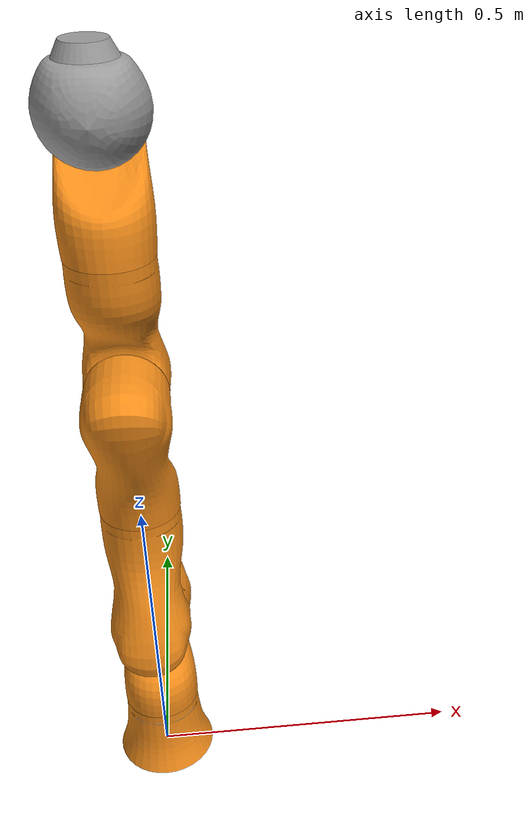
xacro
<?xml version="1.0"?>
<robot name="kuka_lwr">

 <property name="M_PI" value="3.1415926535897931" />
 <property name="name" value="kuka" />
  <!--
     Little helper macro to define the inertia matrix needed
     for links.
     -->
  <!-- width is along x axis
       length is along y axis
       height is along z axis
  -->
  <macro name="cuboid_inertia_def" params="width height length mass">
    <inertia ixx="${mass * (height * height + length * length) / 12}"
             iyy="${mass * (width * width + height * height) / 12}"
             izz="${mass * (width * width + length * length) / 12}"
             ixy="0" iyz="0" ixz="0"/>
  </macro>

  <!-- length is along the y-axis! -->
  <macro name="cylinder_inertia_def" params="radius length mass">
    <inertia ixx="${mass * (3 * radius * radius + length * length) / 12}"
             iyy="${mass * radius* radius / 2}"
             izz="${mass * (3 * radius * radius + length * length) / 12}"
             ixy="0" iyz="0" ixz="0"/>
  </macro>

  <property name="arm_elem_link_mass" value="2.0"/>
  <property name="arm_elem_ball_link_mass" value="2.0"/>
  <property name="arm_elem_end_link_mass" value="2.0"/>
  <property name="safety_controller_k_pos" value="100" />
  <property name="safety_controller_k_vel" value="2" />
  <property name="joint_damping" value="0.1" />

  <property name="arm_velocity_scale_factor" value="1"/>
  <property name="right" value="0" />
  <!-- right is either 1 (for right arm) or -1 (for left arm) -->

    <link name="calib_${name}_arm_base_link">
      <inertial>
        <mass value="0"/> <!-- static base, disable dynamics for this link -->
        <origin xyz="0 0 0.055" rpy="0 0 0"/>
        <cylinder_inertia_def radius="0.06" length="0.11"
                              mass="2"/>
      </inertial>

      <visual>
        <origin xyz="0 0 0" rpy="0 0 0"/>
        <geometry>
          <mesh filename="meshes_arm/arm_base.stl"/>
        </geometry>
        <material name="Orange"/>
      </visual>
      <collision>
        <origin xyz="0 0 0" rpy="0 0 0"/>
        <geometry>
          <mesh filename="meshes_arm/convex/arm_base_convex.stl"/>
        </geometry>
      </collision>
    </link>

    <joint name="${name}_arm_0_joint" type="revolute">
      <origin xyz="0 0 0.11" rpy="0 0 0"/>
      <axis xyz="0 0 1"/>
      <limit lower="${-170 * M_PI / 180}" upper="${170 * M_PI / 180}"
             effort="204" velocity="${arm_velocity_scale_factor * 110 * M_PI / 180}" />
      <dynamics damping="${joint_damping}"/>
      <parent link="calib_${name}_arm_base_link"/>
      <child link="${name}_arm_1_link"/>
    </joint>

    <link name="${name}_arm_1_link">
      <inertial>
        <mass value="${arm_elem_link_mass}"/>
        <origin rpy="0 0 0" xyz="0 0.04 0.130"/>
        <cuboid_inertia_def length="0.12" width="0.06" height="0.260"
                            mass="${arm_elem_link_mass}"/>
      </inertial>

      <visual>
        <origin xyz="0 0 0" rpy="0 0 ${M_PI}"/>
        <geometry>
          <mesh filename="meshes_arm/arm_segment_a.stl"/>
        </geometry>
        <material name="Orange"/>
      </visual>

      <collision>
        <origin xyz="0 0 0" rpy="0 0 ${M_PI}"/>
        <geometry>
          <mesh filename="meshes_arm/convex/arm_segment_a_convex.stl"/>
        </geometry>
      </collision>
    </link>

    <transmission name="${name}_arm_0_trans" type="pr2_mechanism_model/SimpleTransmission">
      <actuator name="${name}_arm_0_motor"/>
      <joint name="${name}_arm_0_joint"/>
      <mechanicalReduction>1.0</mechanicalReduction>
    </transmission>

    <joint name="${name}_arm_1_joint" type="revolute">
      <origin xyz="0 0 0.20" rpy="0 0 0"/>
      <axis xyz="0 -1 0"/>
      <!--limit lower="${-120 * M_PI / 180}" upper="${120 * M_PI / 180}"
             effort="306" velocity="${arm_velocity_scale_factor * 110 * M_PI / 180}" /-->
                 <!-- nalt: Reduced limits to avoid contact with table - kinda hacky, should not be done here -->
      <limit lower="${-90 * M_PI / 180}" upper="${90 * M_PI / 180}"
             effort="306" velocity="${arm_velocity_scale_factor * 110 * M_PI / 180}" />
      <dynamics damping="${joint_damping}"/>
      <parent link="${name}_arm_1_link"/>
      <child link="${name}_arm_2_link"/>
    </joint>

    <link name="${name}_arm_2_link">
      <inertial>
        <mass value="${arm_elem_link_mass}"/>
        <origin rpy="0 0 0" xyz="0 -0.04 ${0.130 - 0.06}"/>
        <cuboid_inertia_def length="0.12" width="0.06" height="0.260"
                            mass="${arm_elem_link_mass}"/>
      </inertial>

      <visual>
        <origin xyz="0 0 0.2" rpy="${M_PI} 0 ${M_PI}"/>
        <geometry>
          <mesh filename="meshes_arm/arm_segment_b.stl"/>
        </geometry>
        <material name="Orange"/>
      </visual>

      <collision>
        <origin xyz="0 0 0.2" rpy="${M_PI} 0 ${M_PI}"/>
        <geometry>
          <mesh filename="meshes_arm/convex/arm_segment_b_convex.stl"/>
        </geometry>
      </collision>
    </link>

    <transmission name="${name}_arm_1_trans" type="pr2_mechanism_model/SimpleTransmission">
      <actuator name="${name}_arm_1_motor"/>
      <joint name="${name}_arm_1_joint"/>
      <mechanicalReduction>1.0</mechanicalReduction>
    </transmission>

    <joint name="${name}_arm_2_joint" type="revolute">
      <origin xyz="0 0 0.20" rpy="0 0 0"/>
      <axis xyz="0 0 1"/>
      <limit lower="${-170 * M_PI / 180}" upper="${170 * M_PI / 180}"
             effort="204" velocity="${arm_velocity_scale_factor * 130 * M_PI / 180}" />
      <dynamics damping="${joint_damping}"/>
      <parent link="${name}_arm_2_link"/>
      <child link="${name}_arm_3_link"/>
    </joint>

    <link name="${name}_arm_3_link">
      <inertial>
        <mass value="${arm_elem_link_mass}"/>
        <origin rpy="0 0 0" xyz="0 -0.04 0.130"/>
        <cuboid_inertia_def length="0.12" width="0.06" height="0.260"
                            mass="${arm_elem_link_mass}"/>
      </inertial>

      <visual>
        <origin xyz="0 0 0" rpy="0 0 0"/>
        <geometry>
          <mesh filename="meshes_arm/arm_segment_a.stl"/>
        </geometry>
        <material name="Orange"/>
      </visual>

      <collision>
        <origin xyz="0 0 0" rpy="0 0 0"/>
        <geometry>
          <mesh filename="meshes_arm/convex/arm_segment_a_convex.stl"/>
        </geometry>
      </collision>
    </link>

    <transmission name="${name}_arm_2_trans" type="pr2_mechanism_model/SimpleTransmission">
      <actuator name="${name}_arm_2_motor"/>
      <joint name="${name}_arm_2_joint"/>
      <mechanicalReduction>1.0</mechanicalReduction>
    </transmission>

    <joint name="${name}_arm_3_joint" type="revolute">
      <origin xyz="0 0 0.20" rpy="0 0 0"/>
      <axis xyz="0 1 0"/>
      <limit lower="${-120 * M_PI / 180}" upper="${120 * M_PI / 180}"
             effort="306" velocity="${arm_velocity_scale_factor * 130 * M_PI / 180}" />
      <dynamics damping="${joint_damping}"/>
      <parent link="${name}_arm_3_link"/>
      <child link="${name}_arm_4_link"/>
    </joint>

    <link name="${name}_arm_4_link">
      <inertial>
        <mass value="${arm_elem_link_mass}"/>
        <origin rpy="0 0 0" xyz="0 0.04 ${0.130 - 0.06}"/>
        <cuboid_inertia_def length="0.12" width="0.06" height="0.2600"
                            mass="${arm_elem_link_mass}"/>
      </inertial>

      <visual>
        <origin xyz="0 0 0.2" rpy="0 ${M_PI} ${M_PI}"/>
        <geometry>
          <mesh filename="meshes_arm/arm_segment_b.stl"/>
        </geometry>
        <material name="Orange"/>
      </visual>

      <collision>
        <origin xyz="0 0 0.2" rpy="0 ${M_PI} ${M_PI}"/>
        <geometry>
          <mesh filename="meshes_arm/convex/arm_segment_b_convex.stl"/>
        </geometry>
      </collision>
    </link>

    <transmission name="${name}_arm_3_trans" type="pr2_mechanism_model/SimpleTransmission">
      <actuator name="${name}_arm_3_motor"/>
      <joint name="${name}_arm_3_joint"/>
      <mechanicalReduction>1.0</mechanicalReduction>
    </transmission>

    <joint name="${name}_arm_4_joint" type="revolute">
      <origin xyz="0 0 0.20" rpy="0 0 0"/>
      <axis xyz="0 0 1"/>
      <limit lower="${-170 * M_PI / 180}" upper="${170 * M_PI / 180}"
             effort="204" velocity="${arm_velocity_scale_factor * 130 * M_PI / 180}" />
      <dynamics damping="${joint_damping}"/>
      <parent link="${name}_arm_4_link"/>
      <child link="${name}_arm_5_link"/>
    </joint>

    <link name="${name}_arm_5_link">
      <inertial>
        <mass value="${arm_elem_link_mass}"/>
        <origin rpy="0 0 0" xyz="0 0.02 0.124"/>
        <cuboid_inertia_def length="0.12" width="0.06" height="0.248"
                            mass="${arm_elem_link_mass}"/>
      </inertial>

      <visual>
        <origin xyz="0 0 0" rpy="0 0 ${M_PI}"/>
        <geometry name="${name}_arm_5_geom">
          <mesh filename="meshes_arm/arm_segment_last.stl"/>
        </geometry>
        <material name="Orange"/>
      </visual>

      <collision>
        <origin xyz="0 0 0" rpy="0 0 ${M_PI}"/>
        <geometry>
          <mesh filename="meshes_arm/convex/arm_segment_last_convex.stl"/>
        </geometry>
      </collision>
    </link>

    <transmission name="${name}_arm_4_trans" type="pr2_mechanism_model/SimpleTransmission">
      <actuator name="${name}_arm_4_motor"/>
      <joint name="${name}_arm_4_joint"/>
      <mechanicalReduction>1.0</mechanicalReduction>
    </transmission>

    <joint name="${name}_arm_5_joint" type="revolute">
      <origin xyz="0 0 0.19" rpy="0 0 0"/>
      <axis xyz="0 -1 0"/>
      <limit lower="${-120 * M_PI / 180}" upper="${120 * M_PI / 180}"
             effort="306" velocity="${arm_velocity_scale_factor * 180 * M_PI / 180}" />
      <dynamics damping="${joint_damping}"/>
      <parent link="${name}_arm_5_link"/>
      <child link="${name}_arm_6_link"/>
    </joint>

    <link name="${name}_arm_6_link">
      <inertial>
        <mass value="${arm_elem_ball_link_mass}"/>
        <origin rpy="0 0 0" xyz="0 0 0"/>
        <cuboid_inertia_def length="0.125" width="0.125" height="0.125"
                            mass="${arm_elem_ball_link_mass}"/>
      </inertial>

      <visual>
        <origin xyz="0 0 0" rpy="0 0 ${M_PI}"/>
        <geometry>
          <mesh filename="meshes_arm/arm_wrist.stl"/>
        </geometry>
        <material name="Grey"/>
      </visual>

      <collision>
        <origin xyz="0 0 0" rpy="0 0 ${M_PI}"/>
        <geometry>
          <mesh filename="meshes_arm/convex/arm_wrist_convex.stl"/>
        </geometry>
      </collision>
    </link>

    <transmission name="${name}_arm_5_trans" type="pr2_mechanism_model/SimpleTransmission">
      <actuator name="${name}_arm_5_motor"/>
      <joint name="${name}_arm_5_joint"/>
      <mechanicalReduction>1.0</mechanicalReduction>
    </transmission>

    <joint name="${name}_arm_6_joint" type="revolute">
      <origin xyz="0 0 0.078" rpy="0 0 0"/>
      <axis xyz="0 0 1"/>
      <limit lower="${-170 * M_PI / 180}" upper="${170 * M_PI / 180}"
             effort="204" velocity="${arm_velocity_scale_factor * 180 * M_PI / 180}" />
      <dynamics damping="${joint_damping}"/>
      <parent link="${name}_arm_6_link"/>
      <child link="${name}_arm_7_link"/>
    </joint>

    <link name="${name}_arm_7_link">
      <inertial>
        <mass value="${arm_elem_end_link_mass}"/>
        <origin xyz="0 0 0"/>
        <cuboid_inertia_def length="0.05" width="0.05" height="0.05"
                            mass="${arm_elem_end_link_mass}"/>
      </inertial>
      <visual>
        <origin xyz="0 0 0" rpy="0 0 ${right * -1/4 * M_PI  +  M_PI}"/>
        <geometry>
          <mesh filename="meshes_arm/arm_flanche.stl"/>
        </geometry>
        <material name="Grey"/>
      </visual>
      <collision>
        <origin xyz="0 0 0" rpy="0 0 ${right * -1/4 * M_PI  +  M_PI}"/>
        <geometry>
          <mesh filename="meshes_arm/convex/arm_flanche_convex.stl"/>
        </geometry>
      </collision>
    </link>

    <transmission name="${name}_arm_6_trans" type="pr2_mechanism_model/SimpleTransmission">
      <actuator name="${name}_arm_6_motor"/>
      <joint name="${name}_arm_6_joint"/>
      <mechanicalReduction>1.0</mechanicalReduction>
    </transmission>

</robot>
